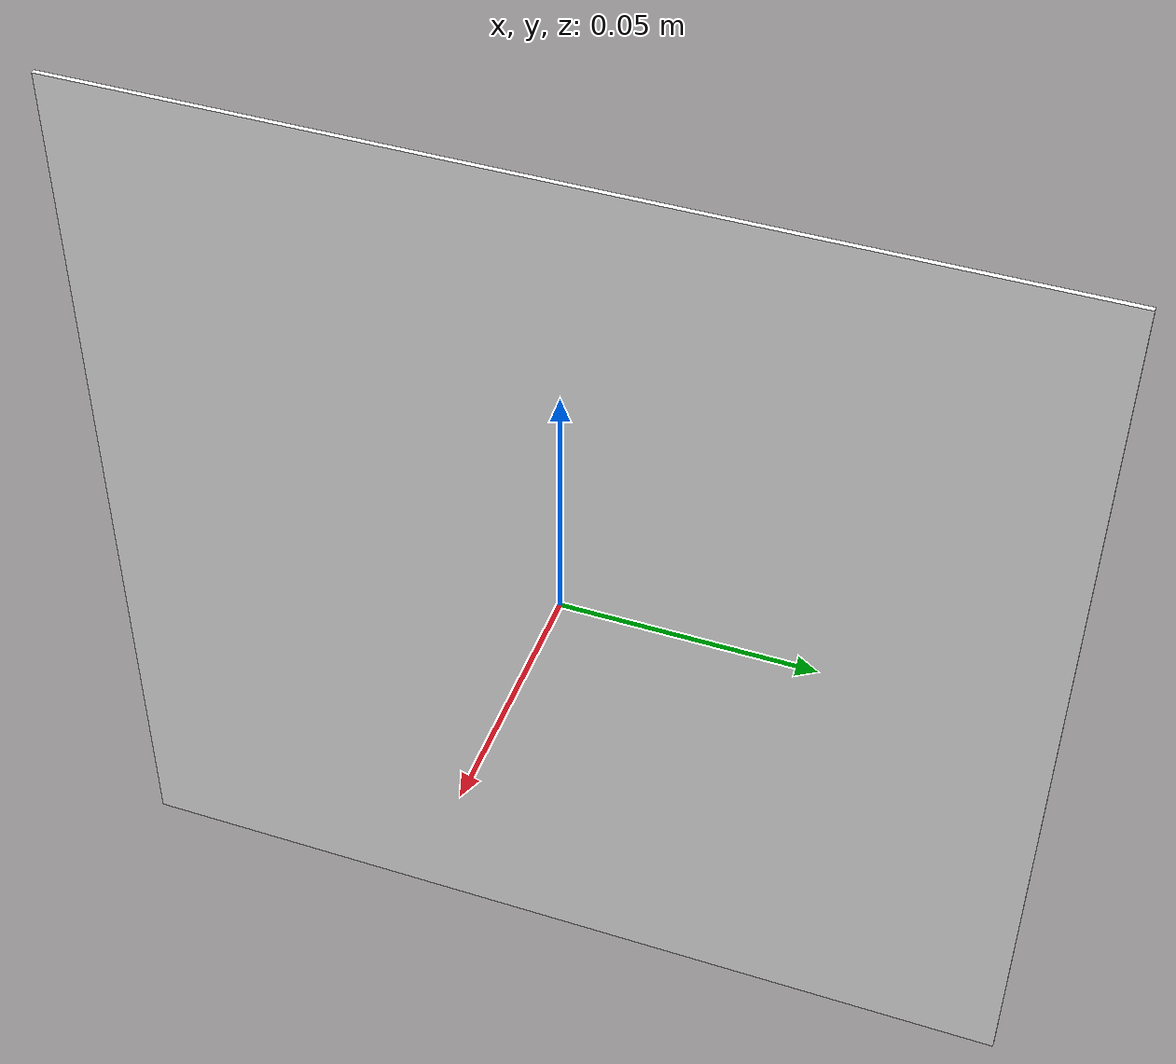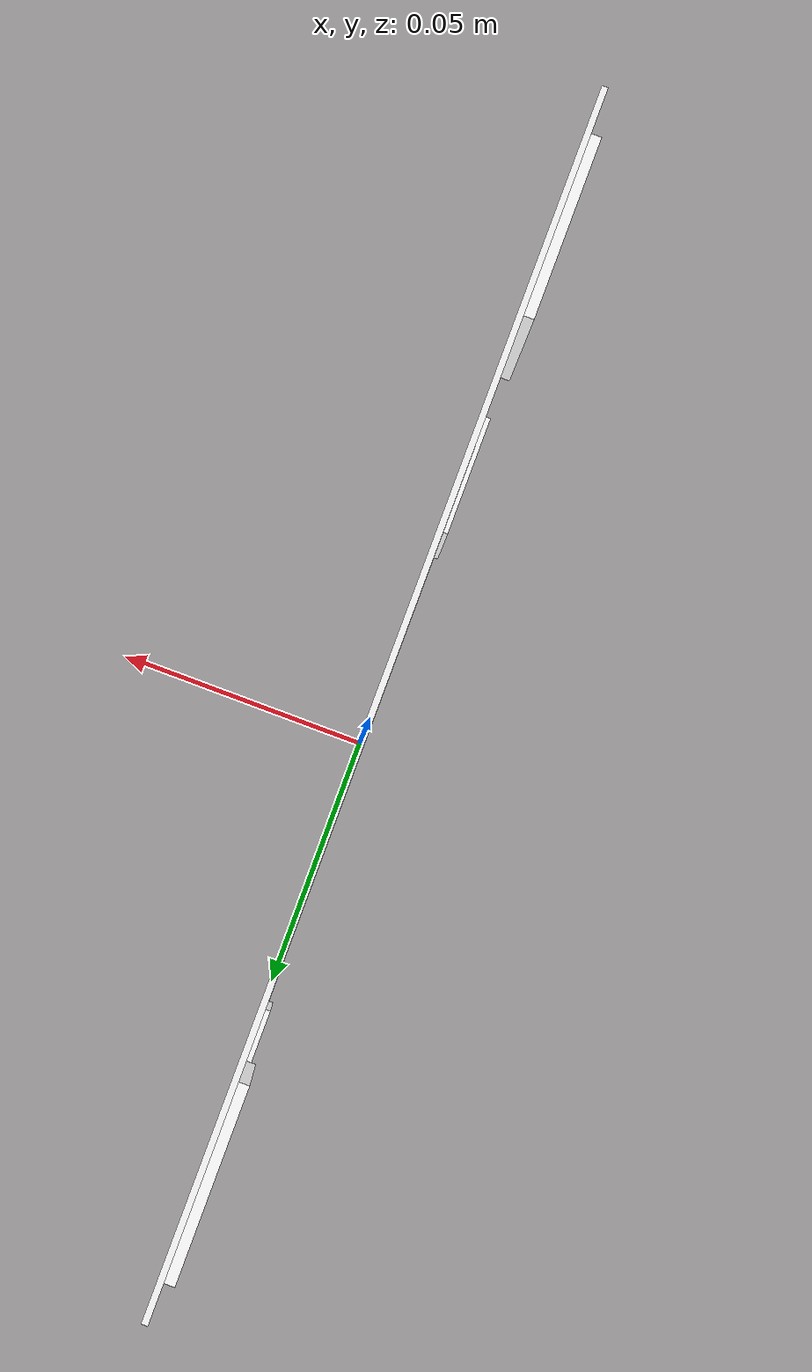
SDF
<?xml version="1.0"?>
<!-- SINH TỰ ĐỘNG bởi scripts/rl/newarm_make_sim.py
     Bảng workspace in thật của tay mới: marker 30mm, tâm marker ±75mm,
     vùng vẽ 100x100mm (khung xám). Không có collision: bút đi xuyên qua bảng. -->
<sdf version="1.8">
  <model name="newarm_board">
    <static>true</static>
    <link name="board_link">
      <visual name="paper">
        <geometry><box><size>0.001 0.19 0.19</size></box></geometry>
        <material>
          <ambient>0.98 0.98 0.98 1</ambient>
          <diffuse>0.98 0.98 0.98 1</diffuse>
          <specular>0.05 0.05 0.05 1</specular>
        </material>
      </visual>
      <visual name="marker_0">
        <pose>-0.0012 0.075 0.075 0 0 1.5708</pose>
        <geometry><box><size>0.03 0.002 0.03</size></box></geometry>
        <material>
          <diffuse>1 1 1 1</diffuse>
          <specular>0.1 0.1 0.1 1</specular>
          <pbr><metal><albedo_map>model://aruco_marker_0/materials/textures/marker_0.png</albedo_map></metal></pbr>
        </material>
      </visual>
      <visual name="marker_1">
        <pose>-0.0012 -0.075 0.075 0 0 1.5708</pose>
        <geometry><box><size>0.03 0.002 0.03</size></box></geometry>
        <material>
          <diffuse>1 1 1 1</diffuse>
          <specular>0.1 0.1 0.1 1</specular>
          <pbr><metal><albedo_map>model://aruco_marker_1/materials/textures/marker_1.png</albedo_map></metal></pbr>
        </material>
      </visual>
      <visual name="marker_2">
        <pose>-0.0012 -0.075 -0.075 0 0 1.5708</pose>
        <geometry><box><size>0.03 0.002 0.03</size></box></geometry>
        <material>
          <diffuse>1 1 1 1</diffuse>
          <specular>0.1 0.1 0.1 1</specular>
          <pbr><metal><albedo_map>model://aruco_marker_2/materials/textures/marker_2.png</albedo_map></metal></pbr>
        </material>
      </visual>
      <visual name="marker_3">
        <pose>-0.0012 0.075 -0.075 0 0 1.5708</pose>
        <geometry><box><size>0.03 0.002 0.03</size></box></geometry>
        <material>
          <diffuse>1 1 1 1</diffuse>
          <specular>0.1 0.1 0.1 1</specular>
          <pbr><metal><albedo_map>model://aruco_marker_3/materials/textures/marker_3.png</albedo_map></metal></pbr>
        </material>
      </visual>
      <visual name="draw_zone_0">
        <pose>-0.0006 0 0.05 0 0 0</pose>
        <geometry><box><size>0.0002 0.1 0.001</size></box></geometry>
        <material><ambient>0.6 0.6 0.6 1</ambient><diffuse>0.6 0.6 0.6 1</diffuse></material>
      </visual>
      <visual name="draw_zone_1">
        <pose>-0.0006 0 -0.05 0 0 0</pose>
        <geometry><box><size>0.0002 0.1 0.001</size></box></geometry>
        <material><ambient>0.6 0.6 0.6 1</ambient><diffuse>0.6 0.6 0.6 1</diffuse></material>
      </visual>
      <visual name="draw_zone_2">
        <pose>-0.0006 0.05 0 0 0 0</pose>
        <geometry><box><size>0.0002 0.001 0.1</size></box></geometry>
        <material><ambient>0.6 0.6 0.6 1</ambient><diffuse>0.6 0.6 0.6 1</diffuse></material>
      </visual>
      <visual name="draw_zone_3">
        <pose>-0.0006 -0.05 0 0 0 0</pose>
        <geometry><box><size>0.0002 0.001 0.1</size></box></geometry>
        <material><ambient>0.6 0.6 0.6 1</ambient><diffuse>0.6 0.6 0.6 1</diffuse></material>
      </visual>
    </link>
  </model>
</sdf>
